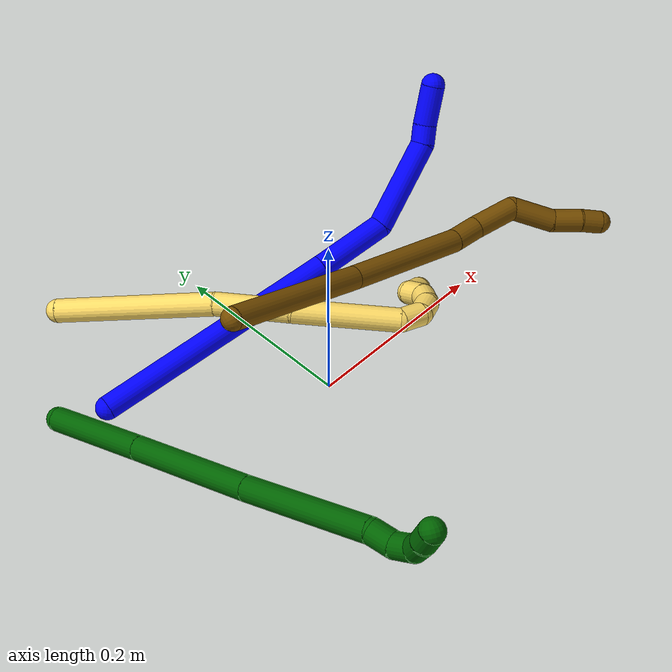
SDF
<sdf version="1.7">
 <world name="default">
  <model name="1">
   <static>0</static>
   <link name="1">
    <collision name="collision-cylinder-e_1_1_4">
     <pose>0.050311 0.040221 0.114815 -0.336952 0.392131 -0.067539</pose>
     <geometry><cylinder><radius>0.0125</radius><length>0.263298</length></cylinder></geometry>
     <surface>
      <friction><ode><mu>1.16</mu><mu2>1.16</mu2><slip1>0</slip1><slip2>0</slip2></ode></friction>
      <contact><ode><kp>1e+06</kp><kd>1</kd><max_vel>0</max_vel><min_depth>0.001</min_depth></ode></contact>
     </surface>
    </collision>
    <visual name="visual-cylinder-e_1_1_4">
     <pose>0.050311 0.040221 0.114815 -0.336952 0.392131 -0.067539</pose>
     <geometry><cylinder><radius>0.0125</radius><length>0.263298</length></cylinder></geometry>
     <material><ambient>0 0 1 1</ambient></material>
    </visual>
    <collision name="collision-cylinder-e_2_4_5">
     <pose>0.116719 0.091444 0.26331 -0.315743 0.426448 -0.06891</pose>
     <geometry><cylinder><radius>0.0125</radius><length>0.077834</length></cylinder></geometry>
     <surface>
      <friction><ode><mu>1.16</mu><mu2>1.16</mu2><slip1>0</slip1><slip2>0</slip2></ode></friction>
      <contact><ode><kp>1e+06</kp><kd>1</kd><max_vel>0</max_vel><min_depth>0.001</min_depth></ode></contact>
     </surface>
    </collision>
    <visual name="visual-cylinder-e_2_4_5">
     <pose>0.116719 0.091444 0.26331 -0.315743 0.426448 -0.06891</pose>
     <geometry><cylinder><radius>0.0125</radius><length>0.077834</length></cylinder></geometry>
     <material><ambient>0 0 1 1</ambient></material>
    </visual>
    <collision name="collision-cylinder-e_3_5_6">
     <pose>0.165396 0.128268 0.320808 -0.825734 0.747754 -0.340391</pose>
     <geometry><cylinder><radius>0.0125</radius><length>0.095822</length></cylinder></geometry>
     <surface>
      <friction><ode><mu>1.16</mu><mu2>1.16</mu2><slip1>0</slip1><slip2>0</slip2></ode></friction>
      <contact><ode><kp>1e+06</kp><kd>1</kd><max_vel>0</max_vel><min_depth>0.001</min_depth></ode></contact>
     </surface>
    </collision>
    <visual name="visual-cylinder-e_3_5_6">
     <pose>0.165396 0.128268 0.320808 -0.825734 0.747754 -0.340391</pose>
     <geometry><cylinder><radius>0.0125</radius><length>0.095822</length></cylinder></geometry>
     <material><ambient>0 0 1 1</ambient></material>
    </visual>
    <collision name="collision-cylinder-e_4_6_7">
     <pose>0.206089 0.160478 0.345975 -1.36273 0.893244 -0.740842</pose>
     <geometry><cylinder><radius>0.0125</radius><length>0.02083</length></cylinder></geometry>
     <surface>
      <friction><ode><mu>1.16</mu><mu2>1.16</mu2><slip1>0</slip1><slip2>0</slip2></ode></friction>
      <contact><ode><kp>1e+06</kp><kd>1</kd><max_vel>0</max_vel><min_depth>0.001</min_depth></ode></contact>
     </surface>
    </collision>
    <visual name="visual-cylinder-e_4_6_7">
     <pose>0.206089 0.160478 0.345975 -1.36273 0.893244 -0.740842</pose>
     <geometry><cylinder><radius>0.0125</radius><length>0.02083</length></cylinder></geometry>
     <material><ambient>0 0 1 1</ambient></material>
    </visual>
    <collision name="collision-cylinder-e_5_7_2">
     <pose>0.227801 0.182778 0.350059 -1.40059 0.699971 -0.596881</pose>
     <geometry><cylinder><radius>0.0125</radius><length>0.042217</length></cylinder></geometry>
     <surface>
      <friction><ode><mu>1.16</mu><mu2>1.16</mu2><slip1>0</slip1><slip2>0</slip2></ode></friction>
      <contact><ode><kp>1e+06</kp><kd>1</kd><max_vel>0</max_vel><min_depth>0.001</min_depth></ode></contact>
     </surface>
    </collision>
    <visual name="visual-cylinder-e_5_7_2">
     <pose>0.227801 0.182778 0.350059 -1.40059 0.699971 -0.596881</pose>
     <geometry><cylinder><radius>0.0125</radius><length>0.042217</length></cylinder></geometry>
     <material><ambient>0 0 1 1</ambient></material>
    </visual>
    <collision name="collision-sphere-2">
     <pose>0.241399 0.19869 0.352794 0 -0 0</pose>
     <geometry><sphere><radius>0.0125</radius></sphere></geometry>
     <surface>
      <friction><ode><mu>1.16</mu><mu2>1.16</mu2><slip1>0</slip1><slip2>0</slip2></ode></friction>
      <contact><ode><kp>1e+06</kp><kd>1</kd><max_vel>0</max_vel><min_depth>0.001</min_depth></ode></contact>
     </surface>
    </collision>
    <visual name="visual-sphere-2">
     <pose>0.241399 0.19869 0.352794 0 -0 0</pose>
     <geometry><sphere><radius>0.0125</radius></sphere></geometry>
     <material><ambient>0 0 1 1</ambient></material>
    </visual>
    <collision name="collision-sphere-7">
     <pose>0.214203 0.166866 0.347324 0 -0 0</pose>
     <geometry><sphere><radius>0.0125</radius></sphere></geometry>
     <surface>
      <friction><ode><mu>1.16</mu><mu2>1.16</mu2><slip1>0</slip1><slip2>0</slip2></ode></friction>
      <contact><ode><kp>1e+06</kp><kd>1</kd><max_vel>0</max_vel><min_depth>0.001</min_depth></ode></contact>
     </surface>
    </collision>
    <visual name="visual-sphere-7">
     <pose>0.214203 0.166866 0.347324 0 -0 0</pose>
     <geometry><sphere><radius>0.0125</radius></sphere></geometry>
     <material><ambient>0 0 1 1</ambient></material>
    </visual>
    <collision name="collision-sphere-6">
     <pose>0.197975 0.15409 0.344627 0 -0 0</pose>
     <geometry><sphere><radius>0.0125</radius></sphere></geometry>
     <surface>
      <friction><ode><mu>1.16</mu><mu2>1.16</mu2><slip1>0</slip1><slip2>0</slip2></ode></friction>
      <contact><ode><kp>1e+06</kp><kd>1</kd><max_vel>0</max_vel><min_depth>0.001</min_depth></ode></contact>
     </surface>
    </collision>
    <visual name="visual-sphere-6">
     <pose>0.197975 0.15409 0.344627 0 -0 0</pose>
     <geometry><sphere><radius>0.0125</radius></sphere></geometry>
     <material><ambient>0 0 1 1</ambient></material>
    </visual>
    <collision name="collision-sphere-5">
     <pose>0.132816 0.102447 0.29699 0 -0 0</pose>
     <geometry><sphere><radius>0.0125</radius></sphere></geometry>
     <surface>
      <friction><ode><mu>1.16</mu><mu2>1.16</mu2><slip1>0</slip1><slip2>0</slip2></ode></friction>
      <contact><ode><kp>1e+06</kp><kd>1</kd><max_vel>0</max_vel><min_depth>0.001</min_depth></ode></contact>
     </surface>
    </collision>
    <visual name="visual-sphere-5">
     <pose>0.132816 0.102447 0.29699 0 -0 0</pose>
     <geometry><sphere><radius>0.0125</radius></sphere></geometry>
     <material><ambient>0 0 1 1</ambient></material>
    </visual>
    <collision name="collision-sphere-1">
     <geometry><sphere><radius>0.0125</radius></sphere></geometry>
     <surface>
      <friction><ode><mu>1.16</mu><mu2>1.16</mu2><slip1>0</slip1><slip2>0</slip2></ode></friction>
      <contact><ode><kp>1e+06</kp><kd>1</kd><max_vel>0</max_vel><min_depth>0.001</min_depth></ode></contact>
     </surface>
    </collision>
    <visual name="visual-sphere-1">
     <geometry><sphere><radius>0.0125</radius></sphere></geometry>
     <material><ambient>0 0 1 1</ambient></material>
    </visual>
    <collision name="collision-sphere-4">
     <pose>0.100621 0.080442 0.22963 0 -0 0</pose>
     <geometry><sphere><radius>0.0125</radius></sphere></geometry>
     <surface>
      <friction><ode><mu>1.16</mu><mu2>1.16</mu2><slip1>0</slip1><slip2>0</slip2></ode></friction>
      <contact><ode><kp>1e+06</kp><kd>1</kd><max_vel>0</max_vel><min_depth>0.001</min_depth></ode></contact>
     </surface>
    </collision>
    <visual name="visual-sphere-4">
     <pose>0.100621 0.080442 0.22963 0 -0 0</pose>
     <geometry><sphere><radius>0.0125</radius></sphere></geometry>
     <material><ambient>0 0 1 1</ambient></material>
    </visual>
    <inertial>
     <pose>0.104179 0.082115 0.206901 0 -0 0</pose>
     <mass>0.5</mass>
     <inertia>
      <ixx>0.001407</ixx>
      <ixy>0</ixy>
      <ixz>0</ixz>
      <iyy>0.001457</iyy>
      <iyz>0</iyz>
      <izz>-0.001162</izz>
     </inertia>
    </inertial>
   </link>
   <pose>-0.184646 0.129528 0.015418 1.80007 -0.280861 1.01844</pose>
  </model>
  <model name="5">
   <static>0</static>
   <link name="5">
    <collision name="collision-cylinder-e_1_1_4">
     <pose>0.055887 -0.064025 -0.018308 1.84932 0.698231 0.899444</pose>
     <geometry><cylinder><radius>0.0125</radius><length>0.173871</length></cylinder></geometry>
     <surface>
      <friction><ode><mu>1.16</mu><mu2>1.16</mu2><slip1>0</slip1><slip2>0</slip2></ode></friction>
      <contact><ode><kp>1e+06</kp><kd>1</kd><max_vel>0</max_vel><min_depth>0.001</min_depth></ode></contact>
     </surface>
    </collision>
    <visual name="visual-cylinder-e_1_1_4">
     <pose>0.055887 -0.064025 -0.018308 1.84932 0.698231 0.899444</pose>
     <geometry><cylinder><radius>0.0125</radius><length>0.173871</length></cylinder></geometry>
     <material><ambient>1 0.858824 0.4 1</ambient></material>
    </visual>
    <collision name="collision-cylinder-e_2_4_5">
     <pose>0.133111 -0.159814 -0.047716 1.90696 0.565116 0.776462</pose>
     <geometry><cylinder><radius>0.0125</radius><length>0.079686</length></cylinder></geometry>
     <surface>
      <friction><ode><mu>1.16</mu><mu2>1.16</mu2><slip1>0</slip1><slip2>0</slip2></ode></friction>
      <contact><ode><kp>1e+06</kp><kd>1</kd><max_vel>0</max_vel><min_depth>0.001</min_depth></ode></contact>
     </surface>
    </collision>
    <visual name="visual-cylinder-e_2_4_5">
     <pose>0.133111 -0.159814 -0.047716 1.90696 0.565116 0.776462</pose>
     <geometry><cylinder><radius>0.0125</radius><length>0.079686</length></cylinder></geometry>
     <material><ambient>1 0.858824 0.4 1</ambient></material>
    </visual>
    <collision name="collision-cylinder-e_3_5_6">
     <pose>0.182438 -0.230417 -0.08659 2.19161 0.530215 0.971498</pose>
     <geometry><cylinder><radius>0.0125</radius><length>0.110695</length></cylinder></geometry>
     <surface>
      <friction><ode><mu>1.16</mu><mu2>1.16</mu2><slip1>0</slip1><slip2>0</slip2></ode></friction>
      <contact><ode><kp>1e+06</kp><kd>1</kd><max_vel>0</max_vel><min_depth>0.001</min_depth></ode></contact>
     </surface>
    </collision>
    <visual name="visual-cylinder-e_3_5_6">
     <pose>0.182438 -0.230417 -0.08659 2.19161 0.530215 0.971498</pose>
     <geometry><cylinder><radius>0.0125</radius><length>0.110695</length></cylinder></geometry>
     <material><ambient>1 0.858824 0.4 1</ambient></material>
    </visual>
    <collision name="collision-cylinder-e_4_6_7">
     <pose>0.217681 -0.27143 -0.124237 2.9248 0.622394 2.48912</pose>
     <geometry><cylinder><radius>0.0125</radius><length>0.024883</length></cylinder></geometry>
     <surface>
      <friction><ode><mu>1.16</mu><mu2>1.16</mu2><slip1>0</slip1><slip2>0</slip2></ode></friction>
      <contact><ode><kp>1e+06</kp><kd>1</kd><max_vel>0</max_vel><min_depth>0.001</min_depth></ode></contact>
     </surface>
    </collision>
    <visual name="visual-cylinder-e_4_6_7">
     <pose>0.217681 -0.27143 -0.124237 2.9248 0.622394 2.48912</pose>
     <geometry><cylinder><radius>0.0125</radius><length>0.024883</length></cylinder></geometry>
     <material><ambient>1 0.858824 0.4 1</ambient></material>
    </visual>
    <collision name="collision-cylinder-e_5_7_8">
     <pose>0.229249 -0.268716 -0.143054 -2.64145 0.400386 -1.34266</pose>
     <geometry><cylinder><radius>0.0125</radius><length>0.022138</length></cylinder></geometry>
     <surface>
      <friction><ode><mu>1.16</mu><mu2>1.16</mu2><slip1>0</slip1><slip2>0</slip2></ode></friction>
      <contact><ode><kp>1e+06</kp><kd>1</kd><max_vel>0</max_vel><min_depth>0.001</min_depth></ode></contact>
     </surface>
    </collision>
    <visual name="visual-cylinder-e_5_7_8">
     <pose>0.229249 -0.268716 -0.143054 -2.64145 0.400386 -1.34266</pose>
     <geometry><cylinder><radius>0.0125</radius><length>0.022138</length></cylinder></geometry>
     <material><ambient>1 0.858824 0.4 1</ambient></material>
    </visual>
    <collision name="collision-cylinder-e_6_8_9">
     <pose>0.233921 -0.255887 -0.159117 -2.30157 0.033528 -0.075048</pose>
     <geometry><cylinder><radius>0.0125</radius><length>0.021339</length></cylinder></geometry>
     <surface>
      <friction><ode><mu>1.16</mu><mu2>1.16</mu2><slip1>0</slip1><slip2>0</slip2></ode></friction>
      <contact><ode><kp>1e+06</kp><kd>1</kd><max_vel>0</max_vel><min_depth>0.001</min_depth></ode></contact>
     </surface>
    </collision>
    <visual name="visual-cylinder-e_6_8_9">
     <pose>0.233921 -0.255887 -0.159117 -2.30157 0.033528 -0.075048</pose>
     <geometry><cylinder><radius>0.0125</radius><length>0.021339</length></cylinder></geometry>
     <material><ambient>1 0.858824 0.4 1</ambient></material>
    </visual>
    <collision name="collision-cylinder-e_7_9_10">
     <pose>0.229683 -0.238159 -0.171398 -2.05635 -0.393632 0.638715</pose>
     <geometry><cylinder><radius>0.0125</radius><length>0.023965</length></cylinder></geometry>
     <surface>
      <friction><ode><mu>1.16</mu><mu2>1.16</mu2><slip1>0</slip1><slip2>0</slip2></ode></friction>
      <contact><ode><kp>1e+06</kp><kd>1</kd><max_vel>0</max_vel><min_depth>0.001</min_depth></ode></contact>
     </surface>
    </collision>
    <visual name="visual-cylinder-e_7_9_10">
     <pose>0.229683 -0.238159 -0.171398 -2.05635 -0.393632 0.638715</pose>
     <geometry><cylinder><radius>0.0125</radius><length>0.023965</length></cylinder></geometry>
     <material><ambient>1 0.858824 0.4 1</ambient></material>
    </visual>
    <collision name="collision-cylinder-e_8_10_11">
     <pose>0.223378 -0.223986 -0.186967 -2.74261 -0.150252 0.712771</pose>
     <geometry><cylinder><radius>0.0125</radius><length>0.022838</length></cylinder></geometry>
     <surface>
      <friction><ode><mu>1.16</mu><mu2>1.16</mu2><slip1>0</slip1><slip2>0</slip2></ode></friction>
      <contact><ode><kp>1e+06</kp><kd>1</kd><max_vel>0</max_vel><min_depth>0.001</min_depth></ode></contact>
     </surface>
    </collision>
    <visual name="visual-cylinder-e_8_10_11">
     <pose>0.223378 -0.223986 -0.186967 -2.74261 -0.150252 0.712771</pose>
     <geometry><cylinder><radius>0.0125</radius><length>0.022838</length></cylinder></geometry>
     <material><ambient>1 0.858824 0.4 1</ambient></material>
    </visual>
    <collision name="collision-cylinder-e_9_11_2">
     <pose>0.224374 -0.217482 -0.207073 -2.92668 0.266023 -1.78454</pose>
     <geometry><cylinder><radius>0.0125</radius><length>0.020586</length></cylinder></geometry>
     <surface>
      <friction><ode><mu>1.16</mu><mu2>1.16</mu2><slip1>0</slip1><slip2>0</slip2></ode></friction>
      <contact><ode><kp>1e+06</kp><kd>1</kd><max_vel>0</max_vel><min_depth>0.001</min_depth></ode></contact>
     </surface>
    </collision>
    <visual name="visual-cylinder-e_9_11_2">
     <pose>0.224374 -0.217482 -0.207073 -2.92668 0.266023 -1.78454</pose>
     <geometry><cylinder><radius>0.0125</radius><length>0.020586</length></cylinder></geometry>
     <material><ambient>1 0.858824 0.4 1</ambient></material>
    </visual>
    <collision name="collision-sphere-2">
     <pose>0.22708 -0.215364 -0.216775 0 -0 0</pose>
     <geometry><sphere><radius>0.0125</radius></sphere></geometry>
     <surface>
      <friction><ode><mu>1.16</mu><mu2>1.16</mu2><slip1>0</slip1><slip2>0</slip2></ode></friction>
      <contact><ode><kp>1e+06</kp><kd>1</kd><max_vel>0</max_vel><min_depth>0.001</min_depth></ode></contact>
     </surface>
    </collision>
    <visual name="visual-sphere-2">
     <pose>0.22708 -0.215364 -0.216775 0 -0 0</pose>
     <geometry><sphere><radius>0.0125</radius></sphere></geometry>
     <material><ambient>1 0.858824 0.4 1</ambient></material>
    </visual>
    <collision name="collision-sphere-11">
     <pose>0.221668 -0.2196 -0.19737 0 -0 0</pose>
     <geometry><sphere><radius>0.0125</radius></sphere></geometry>
     <surface>
      <friction><ode><mu>1.16</mu><mu2>1.16</mu2><slip1>0</slip1><slip2>0</slip2></ode></friction>
      <contact><ode><kp>1e+06</kp><kd>1</kd><max_vel>0</max_vel><min_depth>0.001</min_depth></ode></contact>
     </surface>
    </collision>
    <visual name="visual-sphere-11">
     <pose>0.221668 -0.2196 -0.19737 0 -0 0</pose>
     <geometry><sphere><radius>0.0125</radius></sphere></geometry>
     <material><ambient>1 0.858824 0.4 1</ambient></material>
    </visual>
    <collision name="collision-sphere-10">
     <pose>0.225087 -0.228372 -0.176563 0 -0 0</pose>
     <geometry><sphere><radius>0.0125</radius></sphere></geometry>
     <surface>
      <friction><ode><mu>1.16</mu><mu2>1.16</mu2><slip1>0</slip1><slip2>0</slip2></ode></friction>
      <contact><ode><kp>1e+06</kp><kd>1</kd><max_vel>0</max_vel><min_depth>0.001</min_depth></ode></contact>
     </surface>
    </collision>
    <visual name="visual-sphere-10">
     <pose>0.225087 -0.228372 -0.176563 0 -0 0</pose>
     <geometry><sphere><radius>0.0125</radius></sphere></geometry>
     <material><ambient>1 0.858824 0.4 1</ambient></material>
    </visual>
    <collision name="collision-sphere-9">
     <pose>0.234279 -0.247946 -0.166234 0 -0 0</pose>
     <geometry><sphere><radius>0.0125</radius></sphere></geometry>
     <surface>
      <friction><ode><mu>1.16</mu><mu2>1.16</mu2><slip1>0</slip1><slip2>0</slip2></ode></friction>
      <contact><ode><kp>1e+06</kp><kd>1</kd><max_vel>0</max_vel><min_depth>0.001</min_depth></ode></contact>
     </surface>
    </collision>
    <visual name="visual-sphere-9">
     <pose>0.234279 -0.247946 -0.166234 0 -0 0</pose>
     <geometry><sphere><radius>0.0125</radius></sphere></geometry>
     <material><ambient>1 0.858824 0.4 1</ambient></material>
    </visual>
    <collision name="collision-sphere-4">
     <pose>0.111775 -0.128049 -0.036616 0 -0 0</pose>
     <geometry><sphere><radius>0.0125</radius></sphere></geometry>
     <surface>
      <friction><ode><mu>1.16</mu><mu2>1.16</mu2><slip1>0</slip1><slip2>0</slip2></ode></friction>
      <contact><ode><kp>1e+06</kp><kd>1</kd><max_vel>0</max_vel><min_depth>0.001</min_depth></ode></contact>
     </surface>
    </collision>
    <visual name="visual-sphere-4">
     <pose>0.111775 -0.128049 -0.036616 0 -0 0</pose>
     <geometry><sphere><radius>0.0125</radius></sphere></geometry>
     <material><ambient>1 0.858824 0.4 1</ambient></material>
    </visual>
    <collision name="collision-sphere-1">
     <geometry><sphere><radius>0.0125</radius></sphere></geometry>
     <surface>
      <friction><ode><mu>1.16</mu><mu2>1.16</mu2><slip1>0</slip1><slip2>0</slip2></ode></friction>
      <contact><ode><kp>1e+06</kp><kd>1</kd><max_vel>0</max_vel><min_depth>0.001</min_depth></ode></contact>
     </surface>
    </collision>
    <visual name="visual-sphere-1">
     <geometry><sphere><radius>0.0125</radius></sphere></geometry>
     <material><ambient>1 0.858824 0.4 1</ambient></material>
    </visual>
    <collision name="collision-sphere-8">
     <pose>0.233563 -0.263827 -0.151999 0 -0 0</pose>
     <geometry><sphere><radius>0.0125</radius></sphere></geometry>
     <surface>
      <friction><ode><mu>1.16</mu><mu2>1.16</mu2><slip1>0</slip1><slip2>0</slip2></ode></friction>
      <contact><ode><kp>1e+06</kp><kd>1</kd><max_vel>0</max_vel><min_depth>0.001</min_depth></ode></contact>
     </surface>
    </collision>
    <visual name="visual-sphere-8">
     <pose>0.233563 -0.263827 -0.151999 0 -0 0</pose>
     <geometry><sphere><radius>0.0125</radius></sphere></geometry>
     <material><ambient>1 0.858824 0.4 1</ambient></material>
    </visual>
    <collision name="collision-sphere-5">
     <pose>0.154448 -0.191579 -0.058815 0 -0 0</pose>
     <geometry><sphere><radius>0.0125</radius></sphere></geometry>
     <surface>
      <friction><ode><mu>1.16</mu><mu2>1.16</mu2><slip1>0</slip1><slip2>0</slip2></ode></friction>
      <contact><ode><kp>1e+06</kp><kd>1</kd><max_vel>0</max_vel><min_depth>0.001</min_depth></ode></contact>
     </surface>
    </collision>
    <visual name="visual-sphere-5">
     <pose>0.154448 -0.191579 -0.058815 0 -0 0</pose>
     <geometry><sphere><radius>0.0125</radius></sphere></geometry>
     <material><ambient>1 0.858824 0.4 1</ambient></material>
    </visual>
    <collision name="collision-sphere-6">
     <pose>0.210428 -0.269256 -0.114366 0 -0 0</pose>
     <geometry><sphere><radius>0.0125</radius></sphere></geometry>
     <surface>
      <friction><ode><mu>1.16</mu><mu2>1.16</mu2><slip1>0</slip1><slip2>0</slip2></ode></friction>
      <contact><ode><kp>1e+06</kp><kd>1</kd><max_vel>0</max_vel><min_depth>0.001</min_depth></ode></contact>
     </surface>
    </collision>
    <visual name="visual-sphere-6">
     <pose>0.210428 -0.269256 -0.114366 0 -0 0</pose>
     <geometry><sphere><radius>0.0125</radius></sphere></geometry>
     <material><ambient>1 0.858824 0.4 1</ambient></material>
    </visual>
    <collision name="collision-sphere-7">
     <pose>0.224934 -0.273604 -0.134109 0 -0 0</pose>
     <geometry><sphere><radius>0.0125</radius></sphere></geometry>
     <surface>
      <friction><ode><mu>1.16</mu><mu2>1.16</mu2><slip1>0</slip1><slip2>0</slip2></ode></friction>
      <contact><ode><kp>1e+06</kp><kd>1</kd><max_vel>0</max_vel><min_depth>0.001</min_depth></ode></contact>
     </surface>
    </collision>
    <visual name="visual-sphere-7">
     <pose>0.224934 -0.273604 -0.134109 0 -0 0</pose>
     <geometry><sphere><radius>0.0125</radius></sphere></geometry>
     <material><ambient>1 0.858824 0.4 1</ambient></material>
    </visual>
    <inertial>
     <pose>0.142455 -0.165672 -0.077729 0 -0 0</pose>
     <mass>0.5</mass>
     <inertia>
      <ixx>0.000695</ixx>
      <ixy>0</ixy>
      <ixz>0</ixz>
      <iyy>0.000506</iyy>
      <iyz>0</iyz>
      <izz>5.4e-05</izz>
     </inertia>
    </inertial>
   </link>
   <pose>-0.141618 0.256507 0.028788 0.104151 -0.756624 -0.141115</pose>
  </model>
  <model name="6">
   <static>0</static>
   <link name="6">
    <collision name="collision-cylinder-e_1_1_4">
     <pose>0.001215 -0.055597 0.020342 1.22004 0.020523 0.014345</pose>
     <geometry><cylinder><radius>0.0125</radius><length>0.118428</length></cylinder></geometry>
     <surface>
      <friction><ode><mu>1.16</mu><mu2>1.16</mu2><slip1>0</slip1><slip2>0</slip2></ode></friction>
      <contact><ode><kp>1e+06</kp><kd>1</kd><max_vel>0</max_vel><min_depth>0.001</min_depth></ode></contact>
     </surface>
    </collision>
    <visual name="visual-cylinder-e_1_1_4">
     <pose>0.001215 -0.055597 0.020342 1.22004 0.020523 0.014345</pose>
     <geometry><cylinder><radius>0.0125</radius><length>0.118428</length></cylinder></geometry>
     <material><ambient>0 0.392157 0.003922 1</ambient></material>
    </visual>
    <collision name="collision-cylinder-e_2_4_5">
     <pose>0.00361 -0.178375 0.065978 1.21071 0.016428 0.011369</pose>
     <geometry><cylinder><radius>0.0125</radius><length>0.143589</length></cylinder></geometry>
     <surface>
      <friction><ode><mu>1.16</mu><mu2>1.16</mu2><slip1>0</slip1><slip2>0</slip2></ode></friction>
      <contact><ode><kp>1e+06</kp><kd>1</kd><max_vel>0</max_vel><min_depth>0.001</min_depth></ode></contact>
     </surface>
    </collision>
    <visual name="visual-cylinder-e_2_4_5">
     <pose>0.00361 -0.178375 0.065978 1.21071 0.016428 0.011369</pose>
     <geometry><cylinder><radius>0.0125</radius><length>0.143589</length></cylinder></geometry>
     <material><ambient>0 0.392157 0.003922 1</ambient></material>
    </visual>
    <collision name="collision-cylinder-e_3_5_6">
     <pose>0.007827 -0.316845 0.114967 1.24991 0.040422 0.029163</pose>
     <geometry><cylinder><radius>0.0125</radius><length>0.15037</length></cylinder></geometry>
     <surface>
      <friction><ode><mu>1.16</mu><mu2>1.16</mu2><slip1>0</slip1><slip2>0</slip2></ode></friction>
      <contact><ode><kp>1e+06</kp><kd>1</kd><max_vel>0</max_vel><min_depth>0.001</min_depth></ode></contact>
     </surface>
    </collision>
    <visual name="visual-cylinder-e_3_5_6">
     <pose>0.007827 -0.316845 0.114967 1.24991 0.040422 0.029163</pose>
     <geometry><cylinder><radius>0.0125</radius><length>0.15037</length></cylinder></geometry>
     <material><ambient>0 0.392157 0.003922 1</ambient></material>
    </visual>
    <collision name="collision-cylinder-e_4_6_7">
     <pose>0.009826 -0.397957 0.145998 0.92928 -0.084594 -0.042421</pose>
     <geometry><cylinder><radius>0.0125</radius><length>0.024609</length></cylinder></geometry>
     <surface>
      <friction><ode><mu>1.16</mu><mu2>1.16</mu2><slip1>0</slip1><slip2>0</slip2></ode></friction>
      <contact><ode><kp>1e+06</kp><kd>1</kd><max_vel>0</max_vel><min_depth>0.001</min_depth></ode></contact>
     </surface>
    </collision>
    <visual name="visual-cylinder-e_4_6_7">
     <pose>0.009826 -0.397957 0.145998 0.92928 -0.084594 -0.042421</pose>
     <geometry><cylinder><radius>0.0125</radius><length>0.024609</length></cylinder></geometry>
     <material><ambient>0 0.392157 0.003922 1</ambient></material>
    </visual>
    <collision name="collision-cylinder-e_5_7_8">
     <pose>0.008986 -0.418815 0.155566 1.37129 0.017697 0.014477</pose>
     <geometry><cylinder><radius>0.0125</radius><length>0.022521</length></cylinder></geometry>
     <surface>
      <friction><ode><mu>1.16</mu><mu2>1.16</mu2><slip1>0</slip1><slip2>0</slip2></ode></friction>
      <contact><ode><kp>1e+06</kp><kd>1</kd><max_vel>0</max_vel><min_depth>0.001</min_depth></ode></contact>
     </surface>
    </collision>
    <visual name="visual-cylinder-e_5_7_8">
     <pose>0.008986 -0.418815 0.155566 1.37129 0.017697 0.014477</pose>
     <geometry><cylinder><radius>0.0125</radius><length>0.022521</length></cylinder></geometry>
     <material><ambient>0 0.392157 0.003922 1</ambient></material>
    </visual>
    <collision name="collision-cylinder-e_6_8_9">
     <pose>0.012541 -0.438696 0.154253 1.95194 0.338574 0.494906</pose>
     <geometry><cylinder><radius>0.0125</radius><length>0.020207</length></cylinder></geometry>
     <surface>
      <friction><ode><mu>1.16</mu><mu2>1.16</mu2><slip1>0</slip1><slip2>0</slip2></ode></friction>
      <contact><ode><kp>1e+06</kp><kd>1</kd><max_vel>0</max_vel><min_depth>0.001</min_depth></ode></contact>
     </surface>
    </collision>
    <visual name="visual-cylinder-e_6_8_9">
     <pose>0.012541 -0.438696 0.154253 1.95194 0.338574 0.494906</pose>
     <geometry><cylinder><radius>0.0125</radius><length>0.020207</length></cylinder></geometry>
     <material><ambient>0 0.392157 0.003922 1</ambient></material>
    </visual>
    <collision name="collision-cylinder-e_7_9_2">
     <pose>0.018429 -0.455984 0.145697 2.10641 0.252453 0.438594</pose>
     <geometry><cylinder><radius>0.0125</radius><length>0.020277</length></cylinder></geometry>
     <surface>
      <friction><ode><mu>1.16</mu><mu2>1.16</mu2><slip1>0</slip1><slip2>0</slip2></ode></friction>
      <contact><ode><kp>1e+06</kp><kd>1</kd><max_vel>0</max_vel><min_depth>0.001</min_depth></ode></contact>
     </surface>
    </collision>
    <visual name="visual-cylinder-e_7_9_2">
     <pose>0.018429 -0.455984 0.145697 2.10641 0.252453 0.438594</pose>
     <geometry><cylinder><radius>0.0125</radius><length>0.020277</length></cylinder></geometry>
     <material><ambient>0 0.392157 0.003922 1</ambient></material>
    </visual>
    <collision name="collision-sphere-2">
     <pose>0.020961 -0.464426 0.140687 0 -0 0</pose>
     <geometry><sphere><radius>0.0125</radius></sphere></geometry>
     <surface>
      <friction><ode><mu>1.16</mu><mu2>1.16</mu2><slip1>0</slip1><slip2>0</slip2></ode></friction>
      <contact><ode><kp>1e+06</kp><kd>1</kd><max_vel>0</max_vel><min_depth>0.001</min_depth></ode></contact>
     </surface>
    </collision>
    <visual name="visual-sphere-2">
     <pose>0.020961 -0.464426 0.140687 0 -0 0</pose>
     <geometry><sphere><radius>0.0125</radius></sphere></geometry>
     <material><ambient>0 0.392157 0.003922 1</ambient></material>
    </visual>
    <collision name="collision-sphere-9">
     <pose>0.015896 -0.447542 0.150708 0 -0 0</pose>
     <geometry><sphere><radius>0.0125</radius></sphere></geometry>
     <surface>
      <friction><ode><mu>1.16</mu><mu2>1.16</mu2><slip1>0</slip1><slip2>0</slip2></ode></friction>
      <contact><ode><kp>1e+06</kp><kd>1</kd><max_vel>0</max_vel><min_depth>0.001</min_depth></ode></contact>
     </surface>
    </collision>
    <visual name="visual-sphere-9">
     <pose>0.015896 -0.447542 0.150708 0 -0 0</pose>
     <geometry><sphere><radius>0.0125</radius></sphere></geometry>
     <material><ambient>0 0.392157 0.003922 1</ambient></material>
    </visual>
    <collision name="collision-sphere-4">
     <pose>0.00243 -0.111194 0.040684 0 -0 0</pose>
     <geometry><sphere><radius>0.0125</radius></sphere></geometry>
     <surface>
      <friction><ode><mu>1.16</mu><mu2>1.16</mu2><slip1>0</slip1><slip2>0</slip2></ode></friction>
      <contact><ode><kp>1e+06</kp><kd>1</kd><max_vel>0</max_vel><min_depth>0.001</min_depth></ode></contact>
     </surface>
    </collision>
    <visual name="visual-sphere-4">
     <pose>0.00243 -0.111194 0.040684 0 -0 0</pose>
     <geometry><sphere><radius>0.0125</radius></sphere></geometry>
     <material><ambient>0 0.392157 0.003922 1</ambient></material>
    </visual>
    <collision name="collision-sphere-1">
     <geometry><sphere><radius>0.0125</radius></sphere></geometry>
     <surface>
      <friction><ode><mu>1.16</mu><mu2>1.16</mu2><slip1>0</slip1><slip2>0</slip2></ode></friction>
      <contact><ode><kp>1e+06</kp><kd>1</kd><max_vel>0</max_vel><min_depth>0.001</min_depth></ode></contact>
     </surface>
    </collision>
    <visual name="visual-sphere-1">
     <geometry><sphere><radius>0.0125</radius></sphere></geometry>
     <material><ambient>0 0.392157 0.003922 1</ambient></material>
    </visual>
    <collision name="collision-sphere-8">
     <pose>0.009185 -0.42985 0.157797 0 -0 0</pose>
     <geometry><sphere><radius>0.0125</radius></sphere></geometry>
     <surface>
      <friction><ode><mu>1.16</mu><mu2>1.16</mu2><slip1>0</slip1><slip2>0</slip2></ode></friction>
      <contact><ode><kp>1e+06</kp><kd>1</kd><max_vel>0</max_vel><min_depth>0.001</min_depth></ode></contact>
     </surface>
    </collision>
    <visual name="visual-sphere-8">
     <pose>0.009185 -0.42985 0.157797 0 -0 0</pose>
     <geometry><sphere><radius>0.0125</radius></sphere></geometry>
     <material><ambient>0 0.392157 0.003922 1</ambient></material>
    </visual>
    <collision name="collision-sphere-5">
     <pose>0.004789 -0.245556 0.091272 0 -0 0</pose>
     <geometry><sphere><radius>0.0125</radius></sphere></geometry>
     <surface>
      <friction><ode><mu>1.16</mu><mu2>1.16</mu2><slip1>0</slip1><slip2>0</slip2></ode></friction>
      <contact><ode><kp>1e+06</kp><kd>1</kd><max_vel>0</max_vel><min_depth>0.001</min_depth></ode></contact>
     </surface>
    </collision>
    <visual name="visual-sphere-5">
     <pose>0.004789 -0.245556 0.091272 0 -0 0</pose>
     <geometry><sphere><radius>0.0125</radius></sphere></geometry>
     <material><ambient>0 0.392157 0.003922 1</ambient></material>
    </visual>
    <collision name="collision-sphere-6">
     <pose>0.010866 -0.388134 0.138661 0 -0 0</pose>
     <geometry><sphere><radius>0.0125</radius></sphere></geometry>
     <surface>
      <friction><ode><mu>1.16</mu><mu2>1.16</mu2><slip1>0</slip1><slip2>0</slip2></ode></friction>
      <contact><ode><kp>1e+06</kp><kd>1</kd><max_vel>0</max_vel><min_depth>0.001</min_depth></ode></contact>
     </surface>
    </collision>
    <visual name="visual-sphere-6">
     <pose>0.010866 -0.388134 0.138661 0 -0 0</pose>
     <geometry><sphere><radius>0.0125</radius></sphere></geometry>
     <material><ambient>0 0.392157 0.003922 1</ambient></material>
    </visual>
    <collision name="collision-sphere-7">
     <pose>0.008786 -0.407779 0.153335 0 -0 0</pose>
     <geometry><sphere><radius>0.0125</radius></sphere></geometry>
     <surface>
      <friction><ode><mu>1.16</mu><mu2>1.16</mu2><slip1>0</slip1><slip2>0</slip2></ode></friction>
      <contact><ode><kp>1e+06</kp><kd>1</kd><max_vel>0</max_vel><min_depth>0.001</min_depth></ode></contact>
     </surface>
    </collision>
    <visual name="visual-sphere-7">
     <pose>0.008786 -0.407779 0.153335 0 -0 0</pose>
     <geometry><sphere><radius>0.0125</radius></sphere></geometry>
     <material><ambient>0 0.392157 0.003922 1</ambient></material>
    </visual>
    <inertial>
     <pose>0.005821 -0.234353 0.084676 0 -0 0</pose>
     <mass>0.5</mass>
     <inertia>
      <ixx>0.000707</ixx>
      <ixy>0</ixy>
      <ixz>0</ixz>
      <iyy>0.000209</iyy>
      <iyz>0</iyz>
      <izz>0.000642</izz>
     </inertia>
    </inertial>
   </link>
   <pose>-0.226515 0.155776 0.011492 -2.43105 -0.395379 3.13934</pose>
  </model>
  <model name="12">
   <static>0</static>
   <link name="12">
    <collision name="collision-cylinder-e_1_1_4">
     <pose>0.040351 -0.025383 0.069841 0.348595 0.497453 0.089386</pose>
     <geometry><cylinder><radius>0.0125</radius><length>0.169119</length></cylinder></geometry>
     <surface>
      <friction><ode><mu>1.16</mu><mu2>1.16</mu2><slip1>0</slip1><slip2>0</slip2></ode></friction>
      <contact><ode><kp>1e+06</kp><kd>1</kd><max_vel>0</max_vel><min_depth>0.001</min_depth></ode></contact>
     </surface>
    </collision>
    <visual name="visual-cylinder-e_1_1_4">
     <pose>0.040351 -0.025383 0.069841 0.348595 0.497453 0.089386</pose>
     <geometry><cylinder><radius>0.0125</radius><length>0.169119</length></cylinder></geometry>
     <material><ambient>0.466667 0.301961 0 1</ambient></material>
    </visual>
    <collision name="collision-cylinder-e_2_4_5">
     <pose>0.109238 -0.069363 0.203256 0.284594 0.406787 0.059078</pose>
     <geometry><cylinder><radius>0.0125</radius><length>0.144246</length></cylinder></geometry>
     <surface>
      <friction><ode><mu>1.16</mu><mu2>1.16</mu2><slip1>0</slip1><slip2>0</slip2></ode></friction>
      <contact><ode><kp>1e+06</kp><kd>1</kd><max_vel>0</max_vel><min_depth>0.001</min_depth></ode></contact>
     </surface>
    </collision>
    <visual name="visual-cylinder-e_2_4_5">
     <pose>0.109238 -0.069363 0.203256 0.284594 0.406787 0.059078</pose>
     <geometry><cylinder><radius>0.0125</radius><length>0.144246</length></cylinder></geometry>
     <material><ambient>0.466667 0.301961 0 1</ambient></material>
    </visual>
    <collision name="collision-cylinder-e_3_5_6">
     <pose>0.143543 -0.089293 0.281913 0.088129 0.364025 0.01623</pose>
     <geometry><cylinder><radius>0.0125</radius><length>0.03241</length></cylinder></geometry>
     <surface>
      <friction><ode><mu>1.16</mu><mu2>1.16</mu2><slip1>0</slip1><slip2>0</slip2></ode></friction>
      <contact><ode><kp>1e+06</kp><kd>1</kd><max_vel>0</max_vel><min_depth>0.001</min_depth></ode></contact>
     </surface>
    </collision>
    <visual name="visual-cylinder-e_3_5_6">
     <pose>0.143543 -0.089293 0.281913 0.088129 0.364025 0.01623</pose>
     <geometry><cylinder><radius>0.0125</radius><length>0.03241</length></cylinder></geometry>
     <material><ambient>0.466667 0.301961 0 1</ambient></material>
    </visual>
    <collision name="collision-cylinder-e_4_6_7">
     <pose>0.15517 -0.092818 0.321774 0.088247 0.231263 0.010256</pose>
     <geometry><cylinder><radius>0.0125</radius><length>0.051108</length></cylinder></geometry>
     <surface>
      <friction><ode><mu>1.16</mu><mu2>1.16</mu2><slip1>0</slip1><slip2>0</slip2></ode></friction>
      <contact><ode><kp>1e+06</kp><kd>1</kd><max_vel>0</max_vel><min_depth>0.001</min_depth></ode></contact>
     </surface>
    </collision>
    <visual name="visual-cylinder-e_4_6_7">
     <pose>0.15517 -0.092818 0.321774 0.088247 0.231263 0.010256</pose>
     <geometry><cylinder><radius>0.0125</radius><length>0.051108</length></cylinder></geometry>
     <material><ambient>0.466667 0.301961 0 1</ambient></material>
    </visual>
    <collision name="collision-cylinder-e_5_7_8">
     <pose>0.157825 -0.111384 0.364085 0.751171 -0.132668 -0.052376</pose>
     <geometry><cylinder><radius>0.0125</radius><length>0.048408</length></cylinder></geometry>
     <surface>
      <friction><ode><mu>1.16</mu><mu2>1.16</mu2><slip1>0</slip1><slip2>0</slip2></ode></friction>
      <contact><ode><kp>1e+06</kp><kd>1</kd><max_vel>0</max_vel><min_depth>0.001</min_depth></ode></contact>
     </surface>
    </collision>
    <visual name="visual-cylinder-e_5_7_8">
     <pose>0.157825 -0.111384 0.364085 0.751171 -0.132668 -0.052376</pose>
     <geometry><cylinder><radius>0.0125</radius><length>0.048408</length></cylinder></geometry>
     <material><ambient>0.466667 0.301961 0 1</ambient></material>
    </visual>
    <collision name="collision-cylinder-e_6_8_9">
     <pose>0.152355 -0.134528 0.395858 0.443885 -0.142905 -0.0323</pose>
     <geometry><cylinder><radius>0.0125</radius><length>0.031855</length></cylinder></geometry>
     <surface>
      <friction><ode><mu>1.16</mu><mu2>1.16</mu2><slip1>0</slip1><slip2>0</slip2></ode></friction>
      <contact><ode><kp>1e+06</kp><kd>1</kd><max_vel>0</max_vel><min_depth>0.001</min_depth></ode></contact>
     </surface>
    </collision>
    <visual name="visual-cylinder-e_6_8_9">
     <pose>0.152355 -0.134528 0.395858 0.443885 -0.142905 -0.0323</pose>
     <geometry><cylinder><radius>0.0125</radius><length>0.031855</length></cylinder></geometry>
     <material><ambient>0.466667 0.301961 0 1</ambient></material>
    </visual>
    <collision name="collision-cylinder-e_7_9_2">
     <pose>0.149709 -0.147395 0.419754 0.563007 -0.033053 -0.009559</pose>
     <geometry><cylinder><radius>0.0125</radius><length>0.022856</length></cylinder></geometry>
     <surface>
      <friction><ode><mu>1.16</mu><mu2>1.16</mu2><slip1>0</slip1><slip2>0</slip2></ode></friction>
      <contact><ode><kp>1e+06</kp><kd>1</kd><max_vel>0</max_vel><min_depth>0.001</min_depth></ode></contact>
     </surface>
    </collision>
    <visual name="visual-cylinder-e_7_9_2">
     <pose>0.149709 -0.147395 0.419754 0.563007 -0.033053 -0.009559</pose>
     <geometry><cylinder><radius>0.0125</radius><length>0.022856</length></cylinder></geometry>
     <material><ambient>0.466667 0.301961 0 1</ambient></material>
    </visual>
    <collision name="collision-sphere-2">
     <pose>0.149332 -0.153491 0.429412 0 -0 0</pose>
     <geometry><sphere><radius>0.0125</radius></sphere></geometry>
     <surface>
      <friction><ode><mu>1.16</mu><mu2>1.16</mu2><slip1>0</slip1><slip2>0</slip2></ode></friction>
      <contact><ode><kp>1e+06</kp><kd>1</kd><max_vel>0</max_vel><min_depth>0.001</min_depth></ode></contact>
     </surface>
    </collision>
    <visual name="visual-sphere-2">
     <pose>0.149332 -0.153491 0.429412 0 -0 0</pose>
     <geometry><sphere><radius>0.0125</radius></sphere></geometry>
     <material><ambient>0.466667 0.301961 0 1</ambient></material>
    </visual>
    <collision name="collision-sphere-9">
     <pose>0.150087 -0.141299 0.410095 0 -0 0</pose>
     <geometry><sphere><radius>0.0125</radius></sphere></geometry>
     <surface>
      <friction><ode><mu>1.16</mu><mu2>1.16</mu2><slip1>0</slip1><slip2>0</slip2></ode></friction>
      <contact><ode><kp>1e+06</kp><kd>1</kd><max_vel>0</max_vel><min_depth>0.001</min_depth></ode></contact>
     </surface>
    </collision>
    <visual name="visual-sphere-9">
     <pose>0.150087 -0.141299 0.410095 0 -0 0</pose>
     <geometry><sphere><radius>0.0125</radius></sphere></geometry>
     <material><ambient>0.466667 0.301961 0 1</ambient></material>
    </visual>
    <collision name="collision-sphere-4">
     <pose>0.080702 -0.050766 0.139683 0 -0 0</pose>
     <geometry><sphere><radius>0.0125</radius></sphere></geometry>
     <surface>
      <friction><ode><mu>1.16</mu><mu2>1.16</mu2><slip1>0</slip1><slip2>0</slip2></ode></friction>
      <contact><ode><kp>1e+06</kp><kd>1</kd><max_vel>0</max_vel><min_depth>0.001</min_depth></ode></contact>
     </surface>
    </collision>
    <visual name="visual-sphere-4">
     <pose>0.080702 -0.050766 0.139683 0 -0 0</pose>
     <geometry><sphere><radius>0.0125</radius></sphere></geometry>
     <material><ambient>0.466667 0.301961 0 1</ambient></material>
    </visual>
    <collision name="collision-sphere-1">
     <geometry><sphere><radius>0.0125</radius></sphere></geometry>
     <surface>
      <friction><ode><mu>1.16</mu><mu2>1.16</mu2><slip1>0</slip1><slip2>0</slip2></ode></friction>
      <contact><ode><kp>1e+06</kp><kd>1</kd><max_vel>0</max_vel><min_depth>0.001</min_depth></ode></contact>
     </surface>
    </collision>
    <visual name="visual-sphere-1">
     <geometry><sphere><radius>0.0125</radius></sphere></geometry>
     <material><ambient>0.466667 0.301961 0 1</ambient></material>
    </visual>
    <collision name="collision-sphere-8">
     <pose>0.154624 -0.127758 0.38162 0 -0 0</pose>
     <geometry><sphere><radius>0.0125</radius></sphere></geometry>
     <surface>
      <friction><ode><mu>1.16</mu><mu2>1.16</mu2><slip1>0</slip1><slip2>0</slip2></ode></friction>
      <contact><ode><kp>1e+06</kp><kd>1</kd><max_vel>0</max_vel><min_depth>0.001</min_depth></ode></contact>
     </surface>
    </collision>
    <visual name="visual-sphere-8">
     <pose>0.154624 -0.127758 0.38162 0 -0 0</pose>
     <geometry><sphere><radius>0.0125</radius></sphere></geometry>
     <material><ambient>0.466667 0.301961 0 1</ambient></material>
    </visual>
    <collision name="collision-sphere-5">
     <pose>0.137774 -0.08796 0.266829 0 -0 0</pose>
     <geometry><sphere><radius>0.0125</radius></sphere></geometry>
     <surface>
      <friction><ode><mu>1.16</mu><mu2>1.16</mu2><slip1>0</slip1><slip2>0</slip2></ode></friction>
      <contact><ode><kp>1e+06</kp><kd>1</kd><max_vel>0</max_vel><min_depth>0.001</min_depth></ode></contact>
     </surface>
    </collision>
    <visual name="visual-sphere-5">
     <pose>0.137774 -0.08796 0.266829 0 -0 0</pose>
     <geometry><sphere><radius>0.0125</radius></sphere></geometry>
     <material><ambient>0.466667 0.301961 0 1</ambient></material>
    </visual>
    <collision name="collision-sphere-6">
     <pose>0.149313 -0.090626 0.296997 0 -0 0</pose>
     <geometry><sphere><radius>0.0125</radius></sphere></geometry>
     <surface>
      <friction><ode><mu>1.16</mu><mu2>1.16</mu2><slip1>0</slip1><slip2>0</slip2></ode></friction>
      <contact><ode><kp>1e+06</kp><kd>1</kd><max_vel>0</max_vel><min_depth>0.001</min_depth></ode></contact>
     </surface>
    </collision>
    <visual name="visual-sphere-6">
     <pose>0.149313 -0.090626 0.296997 0 -0 0</pose>
     <geometry><sphere><radius>0.0125</radius></sphere></geometry>
     <material><ambient>0.466667 0.301961 0 1</ambient></material>
    </visual>
    <collision name="collision-sphere-7">
     <pose>0.161027 -0.09501 0.34655 0 -0 0</pose>
     <geometry><sphere><radius>0.0125</radius></sphere></geometry>
     <surface>
      <friction><ode><mu>1.16</mu><mu2>1.16</mu2><slip1>0</slip1><slip2>0</slip2></ode></friction>
      <contact><ode><kp>1e+06</kp><kd>1</kd><max_vel>0</max_vel><min_depth>0.001</min_depth></ode></contact>
     </surface>
    </collision>
    <visual name="visual-sphere-7">
     <pose>0.161027 -0.09501 0.34655 0 -0 0</pose>
     <geometry><sphere><radius>0.0125</radius></sphere></geometry>
     <material><ambient>0.466667 0.301961 0 1</ambient></material>
    </visual>
    <inertial>
     <pose>0.102157 -0.069964 0.213081 0 -0 0</pose>
     <mass>0.5</mass>
     <inertia><ixx>0.000684</ixx><ixy>0</ixy><ixz>0</ixz><iyy>0.0007</iyy><iyz>0</iyz><izz>-6.5e-05</izz></inertia>
    </inertial>
   </link>
   <pose>-0.086598 0.043087 0.137755 1.34401 0.545782 1.14073</pose>
  </model>
 </world>
</sdf>
